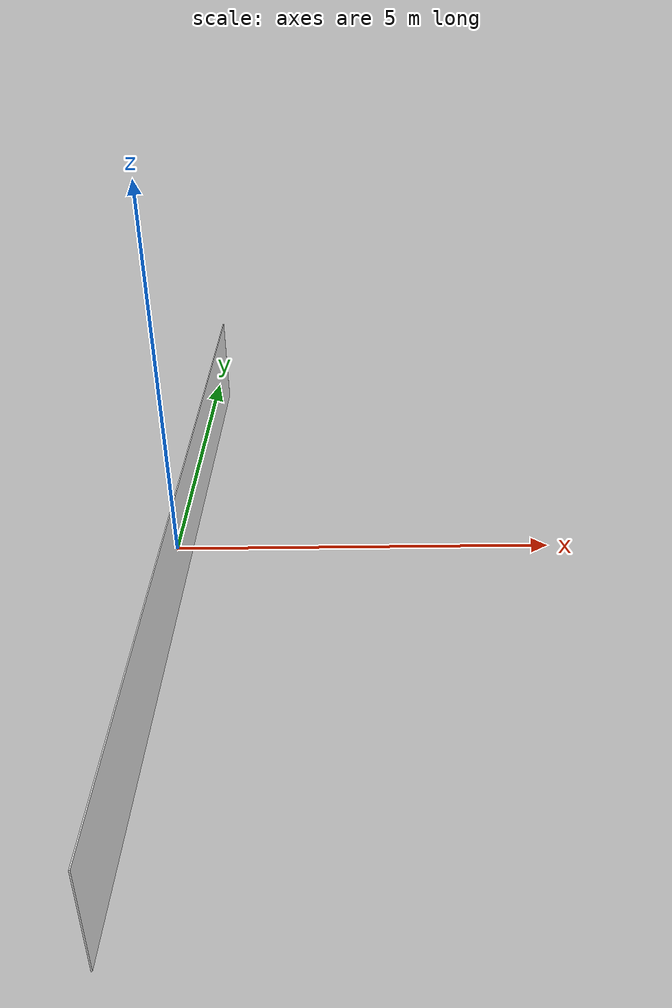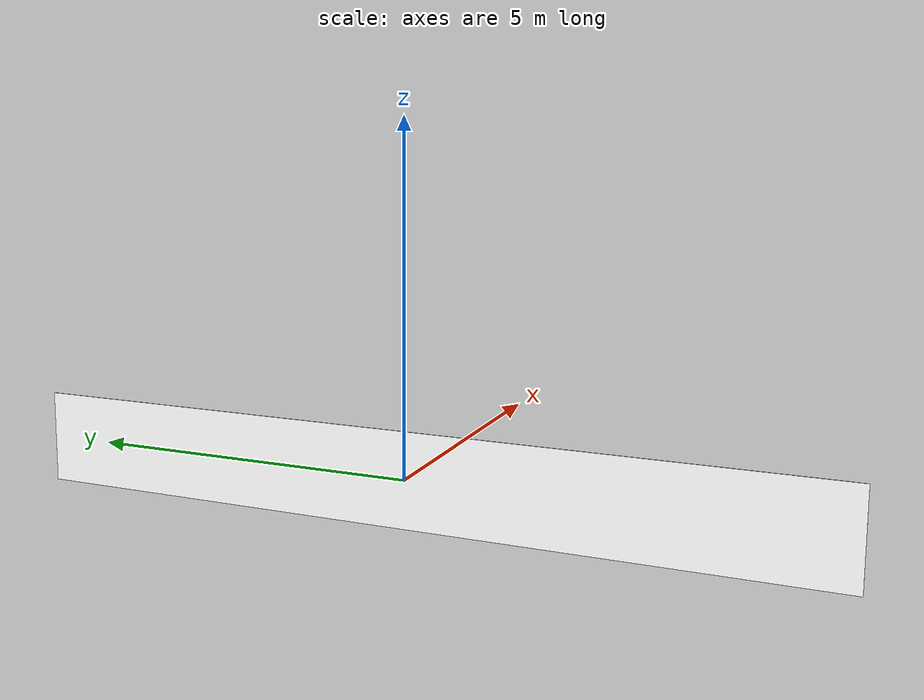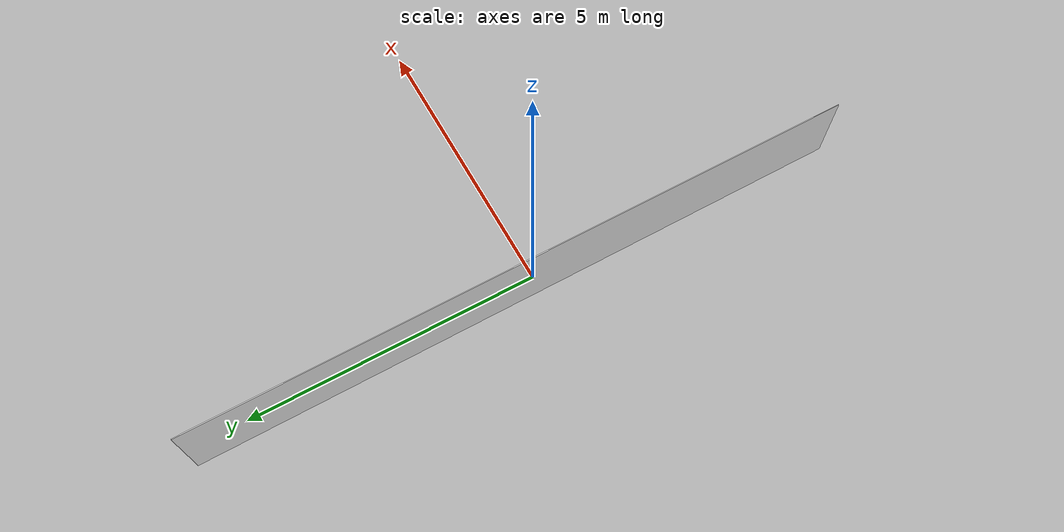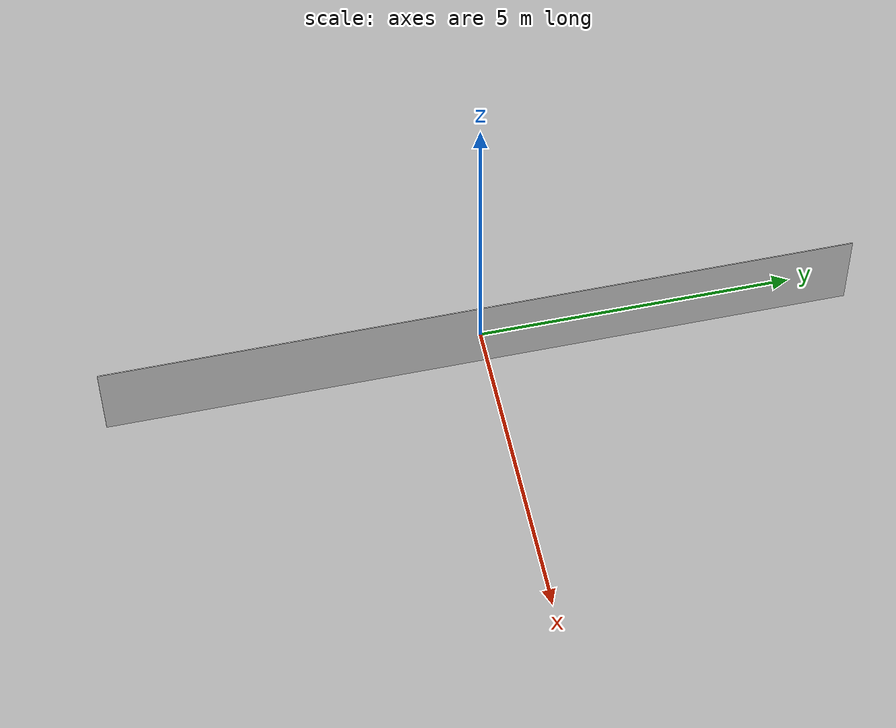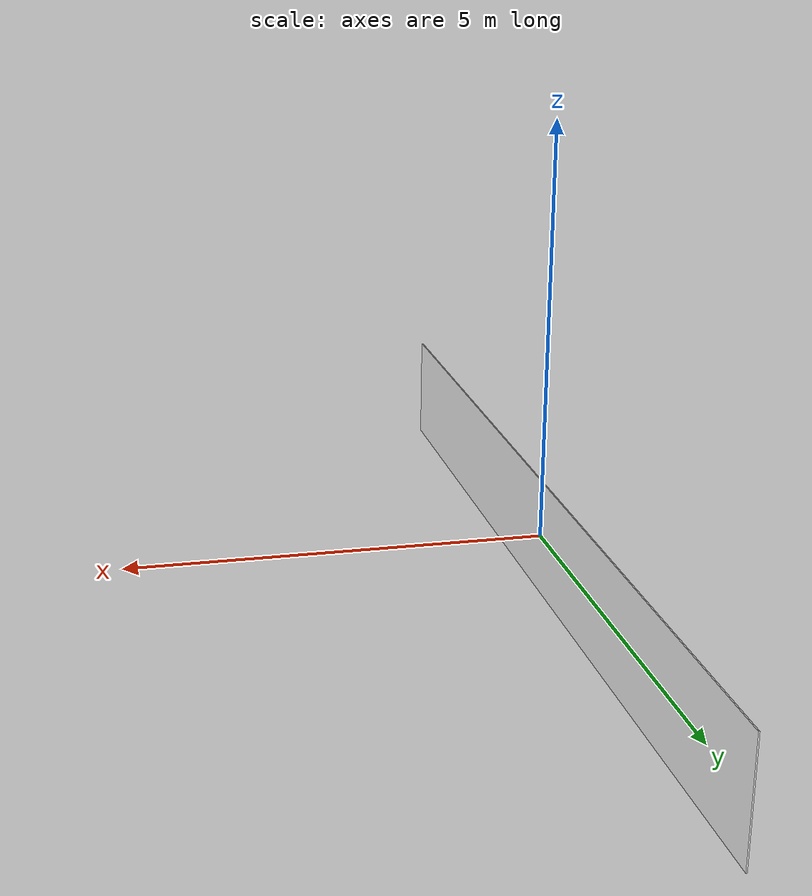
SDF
<?xml version="1.0"?>
<sdf version="1.7">

  <model name="back_wall">
    <link name="back_wall_link">
      <inertial>
        <mass>18.70</mass>
        <inertia>
          <ixx>0.79</ixx>
          <ixy>0</ixy>
          <ixz>0</ixz>
          <iyy>0.53</iyy>
          <iyz>0</iyz>
          <izz>1.2</izz>
        </inertia>
      </inertial>
      <visual name="bottom">
        <pose>0.0 0 0 0 0 0</pose>
        <geometry>
          <box>
            <size>0.015 12.0 1.4</size>
          </box>
        </geometry>
        <material>
          <diffuse>0.9 0.9 0.9 1.0</diffuse>
        </material>
      </visual>
      <collision name="bottom">
        <pose>0.0 0 0 0 0 0</pose>
        <geometry>
          <box>
            <size>0.015 12.0 1.4</size>
          </box>
        </geometry>
        <drake:proximity_properties>
          <drake:compliant_hydroelastic />
          <drake:hydroelastic_modulus>1.0e6</drake:hydroelastic_modulus>
        </drake:proximity_properties>
      </collision>
    </link>
    <frame name="back_wall_center">
      <pose relative_to="back_wall_link">0 0 -0.7 0 0 0</pose>
    </frame>
  </model>
</sdf>
